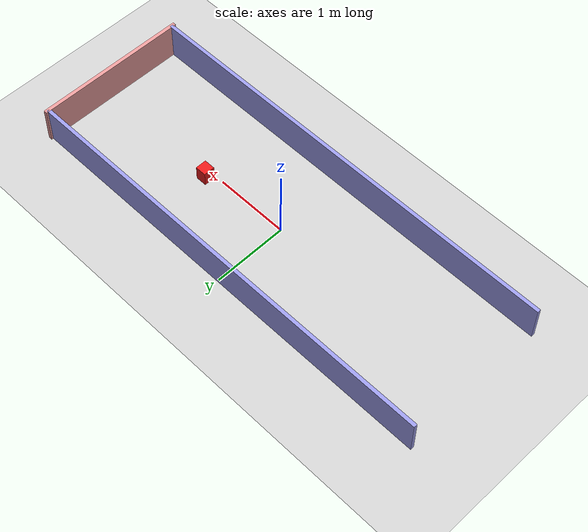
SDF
<?xml version="1.0"?>
<sdf version="1.8">
  <world name="corridor">

    <physics name="1ms" type="ignored">
      <max_step_size>0.001</max_step_size>
      <real_time_factor>1.0</real_time_factor>
    </physics>

    <plugin filename="libgz-sim-physics-system.so"
            name="gz::sim::systems::Physics"/>
    <plugin filename="libgz-sim-sensors-system.so"
            name="gz::sim::systems::Sensors">
      <render_engine>ogre2</render_engine>
    </plugin>
    <plugin filename="libgz-sim-scene-broadcaster-system.so"
            name="gz::sim::systems::SceneBroadcaster"/>
    <plugin filename="libgz-sim-user-commands-system.so"
            name="gz::sim::systems::UserCommands"/>

    <!-- Cahaya -->
    <light type="directional" name="sun">
      <cast_shadows>true</cast_shadows>
      <pose>0 0 10 0 0 0</pose>
      <diffuse>0.8 0.8 0.8 1</diffuse>
      <specular>0.2 0.2 0.2 1</specular>
      <direction>-0.5 0.1 -0.9</direction>
    </light>

    <!-- Lantai -->
    <model name="ground_plane">
      <static>true</static>
      <link name="link">
        <collision name="collision">
          <geometry><plane><normal>0 0 1</normal></plane></geometry>
        </collision>
        <visual name="visual">
          <geometry><plane><normal>0 0 1</normal><size>20 20</size></plane></geometry>
          <material>
            <ambient>0.8 0.8 0.8 1</ambient>
            <diffuse>0.8 0.8 0.8 1</diffuse>
          </material>
        </visual>
      </link>
    </model>

    <!-- ── Dinding lorong ─────────────────────────────── -->
    <!-- Lorong: panjang 4m, lebar 0.8m, posisi tengah di origin -->

    <!-- Dinding kiri -->
<!-- Dinding kiri — panjang 6m -->
<model name="wall_left">
  <static>true</static>
  <pose>0 1.0 0.25 0 0 0</pose>
  <link name="link">
    <collision name="collision">
      <geometry>
        <box><size>6.0 0.05 0.5</size></box>
      </geometry>
      <surface>
        <contact><ode/></contact>
        <friction><ode/></friction>
      </surface>
    </collision>
    <visual name="visual">
      <geometry>
        <box><size>6.0 0.05 0.5</size></box>
      </geometry>
      <material>
        <ambient>0.6 0.6 0.9 1</ambient>
        <diffuse>0.6 0.6 0.9 1</diffuse>
      </material>
    </visual>
  </link>
</model>

<!-- Dinding kanan — panjang 6m -->
<model name="wall_right">
  <static>true</static>
  <pose>0 -1.0 0.25 0 0 0</pose>
  <link name="link">
    <collision name="collision">
      <geometry><box><size>6.0 0.05 0.5</size></box></geometry>
    </collision>
    <visual name="visual">
      <geometry><box><size>6.0 0.05 0.5</size></box></geometry>
      <material>
        <ambient>0.6 0.6 0.9 1</ambient>
        <diffuse>0.6 0.6 0.9 1</diffuse>
      </material>
    </visual>
  </link>
</model>

<!-- Dinding ujung — geser ke x=3.0 -->
<model name="wall_end">
  <static>true</static>
  <pose>3.0 0 0.25 0 0 0</pose>
  <link name="link">
    <collision name="collision">
      <geometry><box><size>0.05 2.1 0.5</size></box></geometry>
    </collision>
    <visual name="visual">
      <geometry><box><size>0.05 2.1 0.5</size></box></geometry>
      <material>
        <ambient>0.9 0.6 0.6 1</ambient>
        <diffuse>0.9 0.6 0.6 1</diffuse>
      </material>
    </visual>
  </link>
</model>

<!-- Obstacle — geser sedikit ke dalam lorong -->
<model name="obstacle">
  <static>true</static>
  <pose>1.2 0.1 0.1 0 0 0</pose>
  <link name="link">
    <collision name="collision">
      <geometry><box><size>0.15 0.15 0.2</size></box></geometry>
    </collision>
    <visual name="visual">
      <geometry><box><size>0.15 0.15 0.2</size></box></geometry>
      <material>
        <ambient>0.9 0.1 0.1 1</ambient>
        <diffuse>0.9 0.1 0.1 1</diffuse>
      </material>
    </visual>
  </link>
</model>

  </world>
</sdf>
